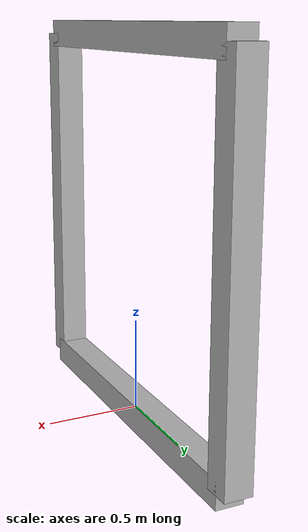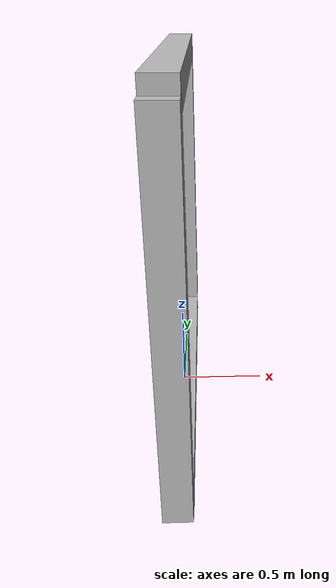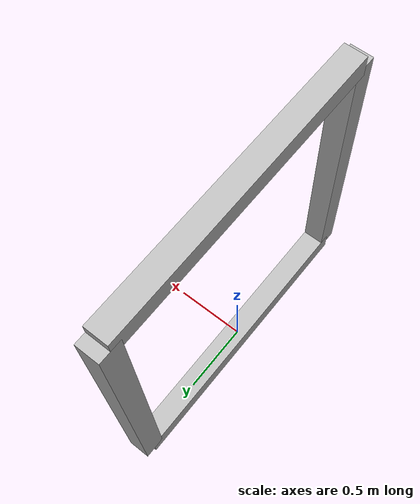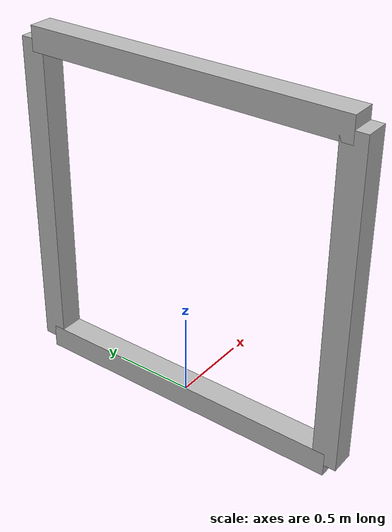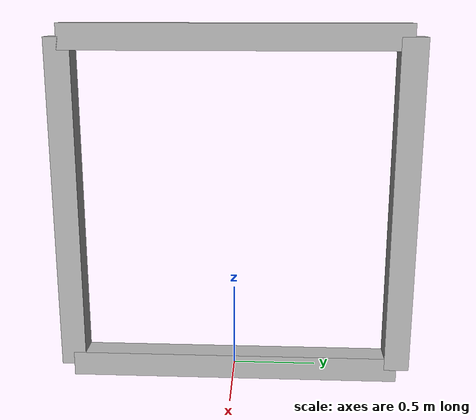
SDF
<sdf version="1.9">
<model name='window'>
      <pose>0 0 1.0 0 0 0</pose>
      <!--Link one-->
      <link name='link1'>
      <pose>0 1.0 0 0 0 0</pose>
        <inertial>
          <inertia>
            <ixx>0.16666</ixx>
            <ixy>0</ixy>
            <ixz>0</ixz>
            <iyy>0.16666</iyy>
            <iyz>0</iyz>
            <izz>0.16666</izz>
          </inertia>
          <mass>1</mass>
        </inertial>
        <collision name='box_collision'>
         <surface>
        <contact>
          <collide_bitmask>0x00</collide_bitmask>
        </contact>
      </surface>
          <geometry>
            <box>
              <size>0.05 0.05 2.0</size>
            </box>
          </geometry>
          <surface>
            <friction>
              <ode/>
            </friction>
            <bounce/>
            <contact/>
          </surface>
        </collision>
        <visual name='box_visual'>
          <geometry>
            <mesh>
              <uri>model://meshes/racing_gate.dae</uri>
              <scale>0.5 0.5 1.0</scale>
            </mesh>
          </geometry>
        </visual>
        <enable_wind>false</enable_wind>
      </link>

    <!--LInk 2-->
      <link name='link2'>
      <pose>0 0 1.0 1.57 0 0</pose>
        <inertial>
          <inertia>
            <ixx>0.16666</ixx>
            <ixy>0</ixy>
            <ixz>0</ixz>
            <iyy>0.16666</iyy>
            <iyz>0</iyz>
            <izz>0.16666</izz>
          </inertia>
          <mass>1</mass>
        </inertial>
        <collision name='box_collision'>
         <surface>
        <contact>
          <collide_bitmask>0x00</collide_bitmask>
        </contact>
      </surface>
          <geometry>
            <box>
              <size>0.05 0.05 2.0</size>
            </box>
          </geometry>
          <surface>
            <friction>
              <ode/>
            </friction>
            <bounce/>
            <contact/>
          </surface>
        </collision>
        <visual name='box_visual'>
          <geometry>
            <mesh>
              <uri>model://meshes/racing_gate.dae</uri>
              <scale>0.5 0.5 1.0</scale>
            </mesh>
          </geometry>
        </visual>
        <enable_wind>false</enable_wind>
      </link>

    <!--Link 3-->
      <link name='link3'>
      <pose>0 -1.0 0 0 0 0</pose>
        <inertial>
          <inertia>
            <ixx>0.16666</ixx>
            <ixy>0</ixy>
            <ixz>0</ixz>
            <iyy>0.16666</iyy>
            <iyz>0</iyz>
            <izz>0.16666</izz>
          </inertia>
          <mass>1</mass>
        </inertial>
        <collision name='box_collision'>
         <surface>
        <contact>
          <collide_bitmask>0x00</collide_bitmask>
        </contact>
      </surface>
          <geometry>
            <box>
              <size>0.05 0.05 2.0</size>
            </box>
          </geometry>
          <surface>
            <friction>
              <ode/>
            </friction>
            <bounce/>
            <contact/>
          </surface>
        </collision>
        <visual name='box_visual'>
          <geometry>
            <mesh>
              <uri>model://meshes/racing_gate.dae</uri>
              <scale>0.5 0.5 1.0</scale>
            </mesh>
          </geometry>
        </visual>
        <enable_wind>false</enable_wind>
      </link>

    <!--Link 4-->
      <link name='link4'>
      <pose>0 0 -1.0 1.57 0 0</pose>
        <inertial>
          <inertia>
            <ixx>0.16666</ixx>
            <ixy>0</ixy>
            <ixz>0</ixz>
            <iyy>0.16666</iyy>
            <iyz>0</iyz>
            <izz>0.16666</izz>
          </inertia>
          <mass>1</mass>
        </inertial>
        <collision name='box_collision'>
         <surface>
        <contact>
          <collide_bitmask>0x00</collide_bitmask>
        </contact>
      </surface>
          <geometry>
            <box>
              <size>0.05 0.05 2.0</size>
            </box>
          </geometry>
          <surface>
            <friction>
              <ode/>
            </friction>
            <bounce/>
            <contact/>
          </surface>
        </collision>
        <visual name='box_visual'>
          <geometry>
            <mesh>
              <uri>model://meshes/racing_gate.dae</uri>
              <scale>0.5 0.5 1.0</scale>
            </mesh>
          </geometry>
        </visual>
        <enable_wind>false</enable_wind>
      </link>

    <!--Joint 12-->
    <joint name='12joint' type='fixed'>
      <parent>link1</parent>
      <child>link2</child>
      <pose>0 0 1.0 0 0 0</pose>
    </joint>

    <!--Joint 23-->
    <joint name='23joint' type='fixed'>
      <pose>0 -1.0 0 0 0 0</pose>
      <parent>link2</parent>
      <child>link3</child>
    </joint>

    <!--Joint 34-->
    <joint name='34joint' type='fixed'>
      <pose>0 0 -1.0 0 0 0</pose>
      <parent>link3</parent>
      <child>link4</child>
    </joint>

      <static>true</static>
      <self_collide>false</self_collide>
    </model>

</sdf>
